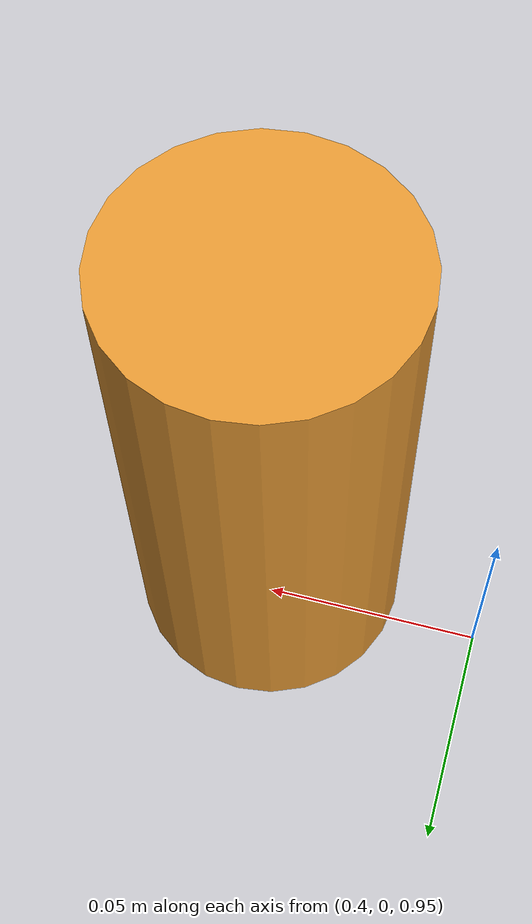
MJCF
<mujoco model="scene_g1_inspire_can">
  <compiler angle="radian"/>

  <!-- Numerics -->
  <option timestep="0.002" integrator="Euler" cone="pyramidal"
          jacobian="dense" iterations="80" tolerance="1e-9"/>

  <!-- Visuals -->
  <statistic center="1.0 0.7 1.0" extent="0.8"/>
  <visual>
    <headlight diffuse="0.6 0.6 0.6" ambient="0.1 0.1 0.1" specular="0.9 0.9 0.9"/>
    <rgba haze="0.15 0.25 0.35 1"/>
    <global azimuth="-140" elevation="-20"/>
  </visual>

  <!-- Assets (ground texture) -->
  <asset>
    <texture type="skybox" builtin="flat" rgb1="0 0 0" rgb2="0 0 0" width="512" height="3072"/>
    <texture type="2d" name="groundplane" builtin="checker" mark="edge"
             rgb1="0.2 0.3 0.4" rgb2="0.1 0.2 0.3" markrgb="0.8 0.8 0.8" width="300" height="300"/>
    <material name="groundplane" texture="groundplane" texuniform="true" texrepeat="5 5" reflectance="0.2"/>
  </asset>

  <worldbody>
    <!-- Light and ground -->
    <light pos="1 0 3.5" dir="0 0 -1" directional="true"/>
    <geom name="floor" size="0 0 0.05" type="plane" material="groundplane" rgba="0.2 0.25 0.3 1"/>

    <!-- === Target can with FREE joint (env expects joint name 'can_free') === -->
    <!-- Place it near the robot work area; env will randomize if randomize_init=True -->
    <body name="can_body" pos="0.45 0.00 1.02">
      <joint name="can_free" type="free"/>
      <geom name="can_geom" type="cylinder" size="0.03 0.06"
            rgba="0.9 0.6 0.2 1"
            friction="1.0 0.005 0.0001"
            contype="1" conaffinity="1"/>
      <site name="can_site" pos="0 0 0" size="0.006" type="sphere" rgba="0.2 0.8 0.2 1"/>
    </body>
  </worldbody>
</mujoco>
